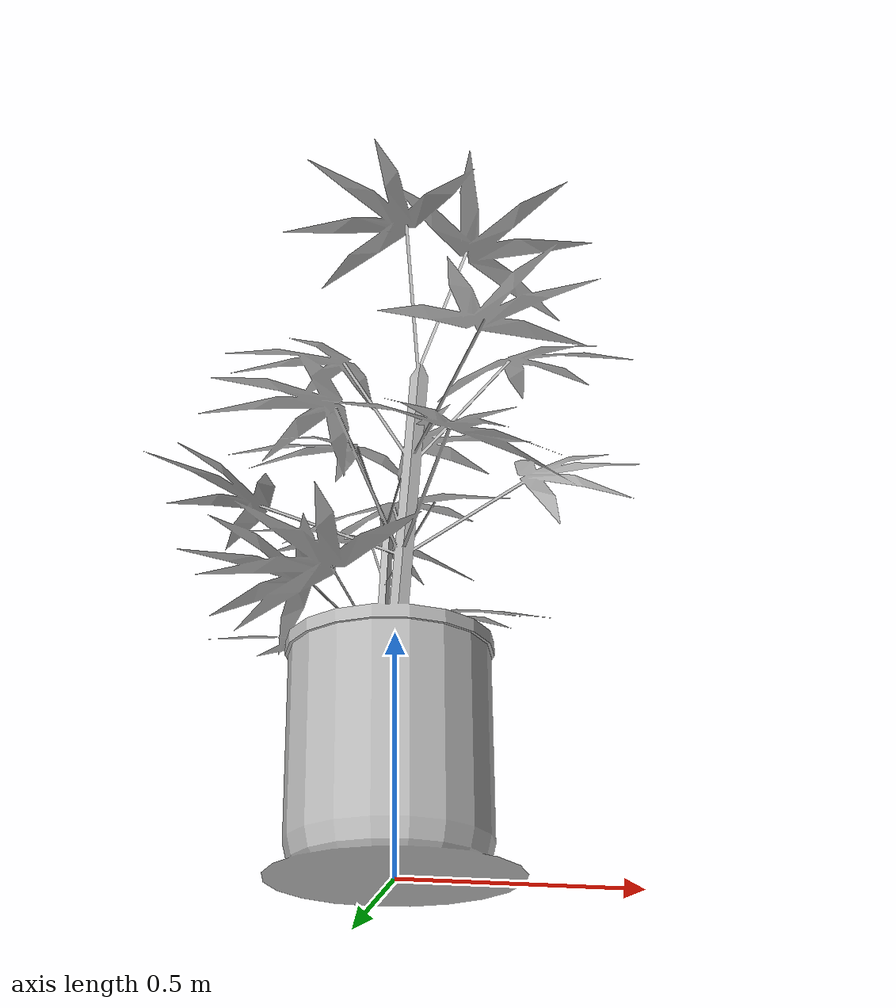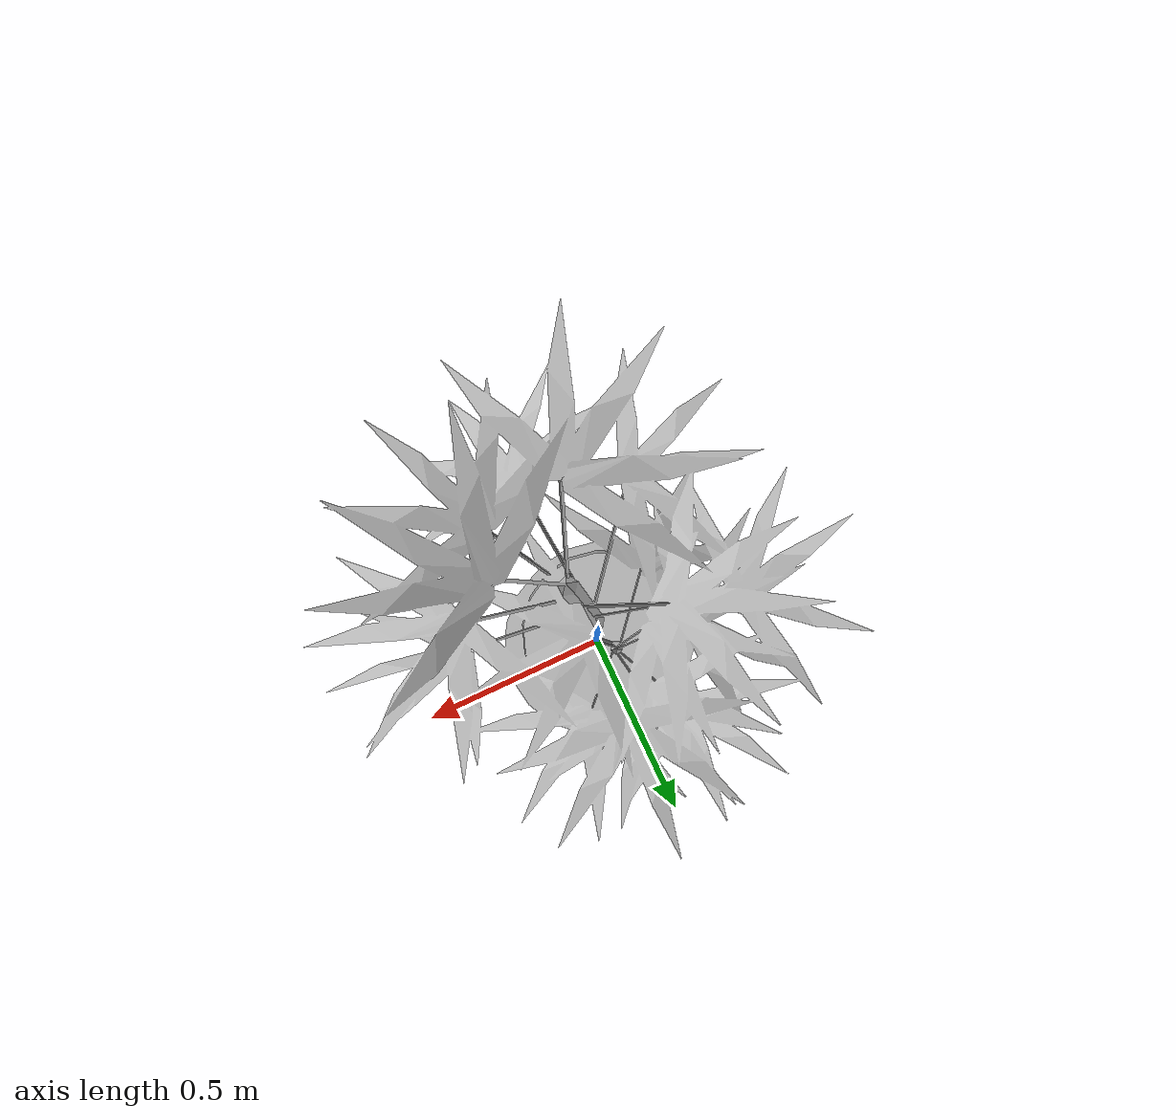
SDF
<?xml version='1.0' ?>
<sdf version='1.6'>
  <model name='Big_pot'>
    <static>true</static>
    <link name='link'>
      <collision name='collision'>
        <geometry>
          <mesh>
            <uri>model://big_pot/meshes/collision/collision.stl</uri>
          </mesh>
        </geometry>
      </collision>
      <visual name='visual'>
        <geometry>
          <mesh>
            <uri>model://big_pot/meshes/visual/visual.dae</uri>
          </mesh>
        </geometry>
      </visual>
    </link>
  </model>
</sdf>
